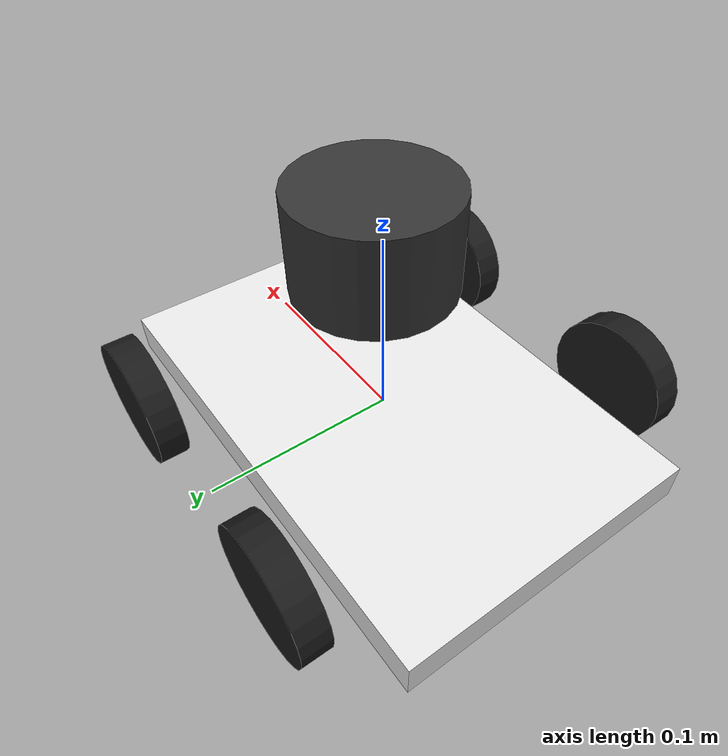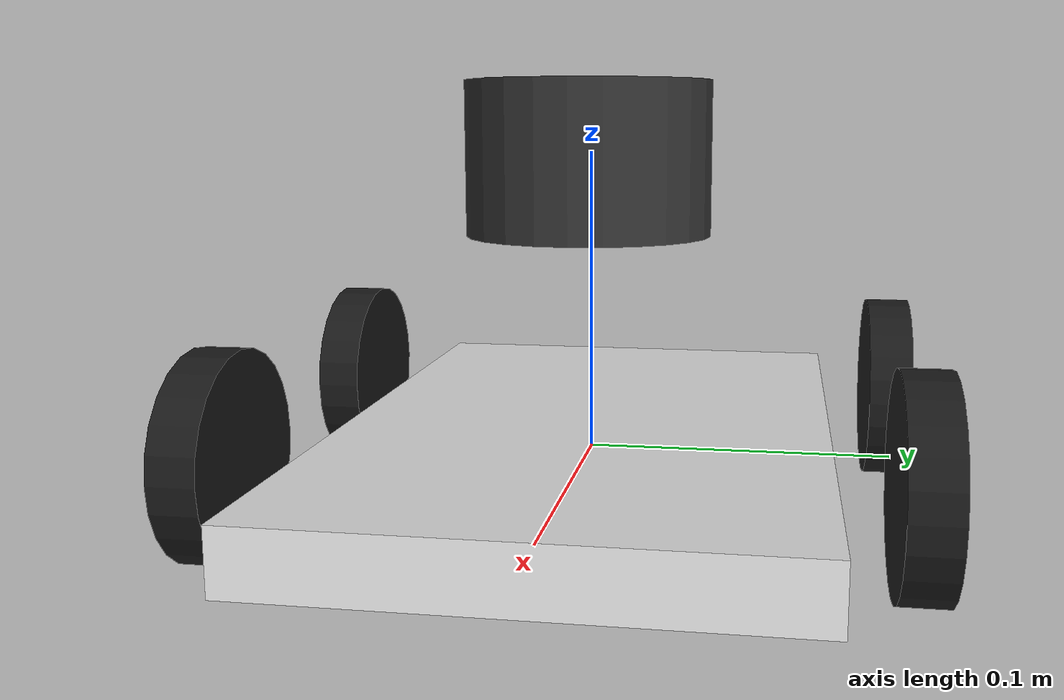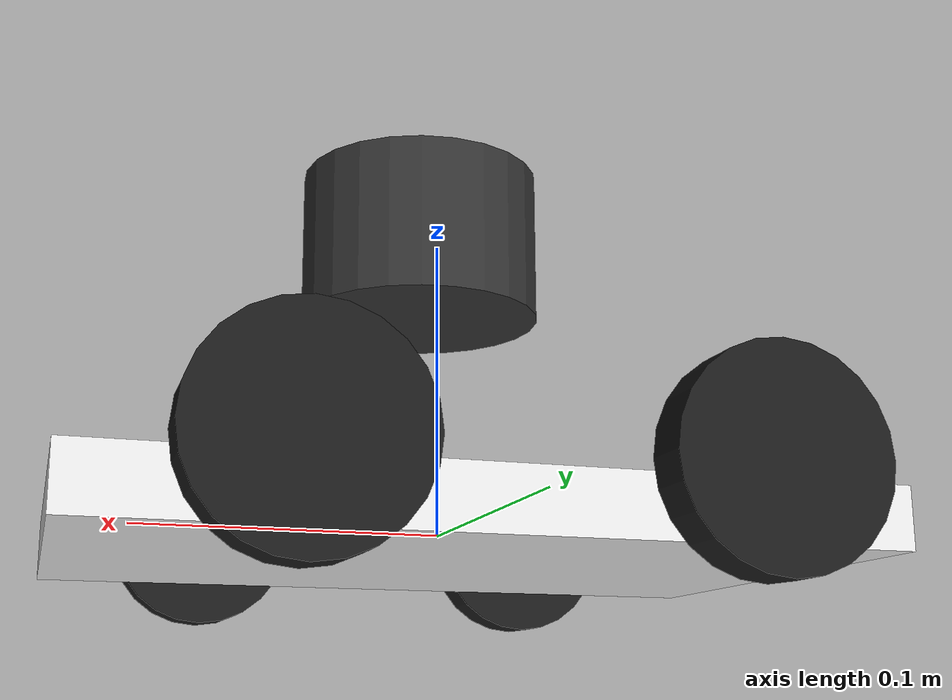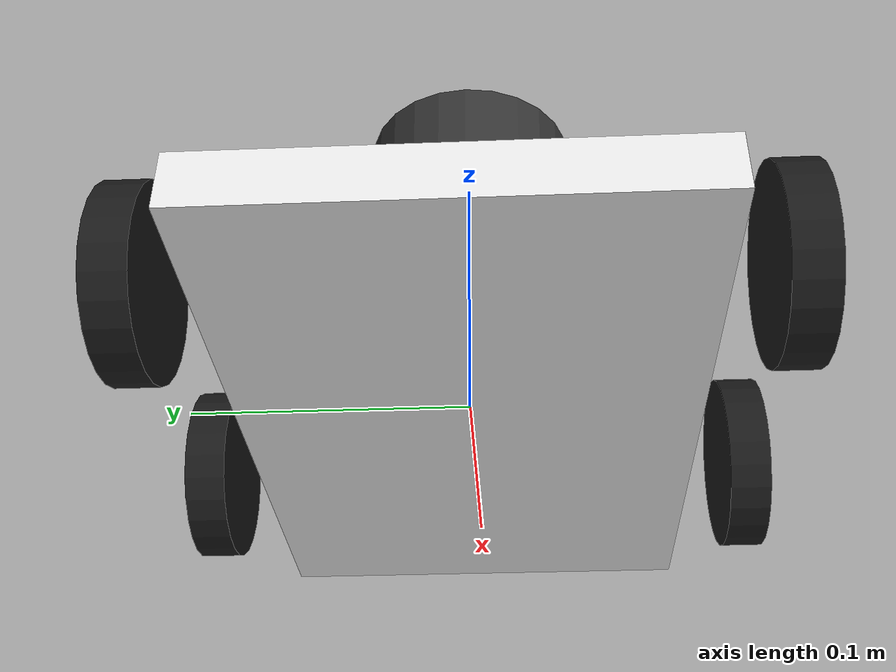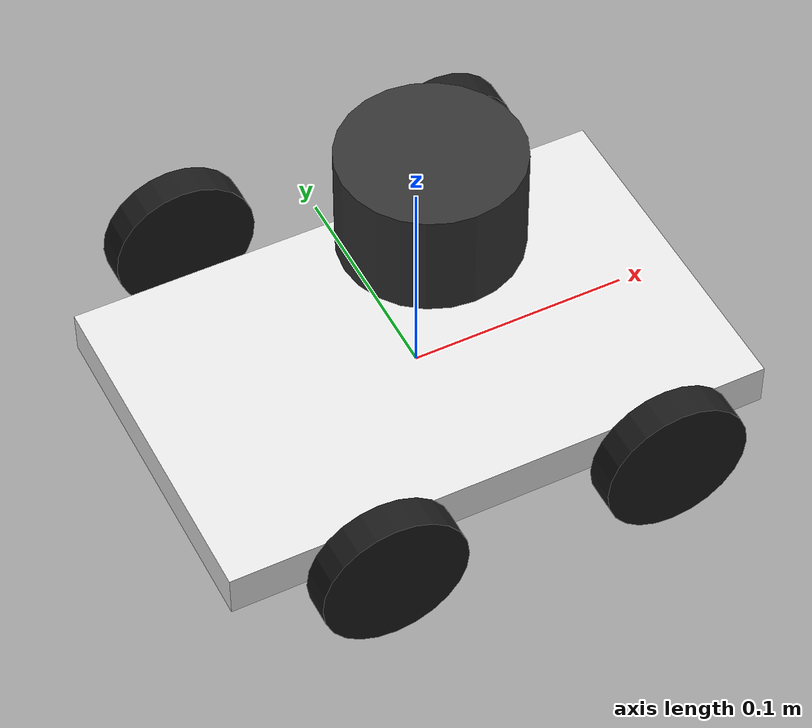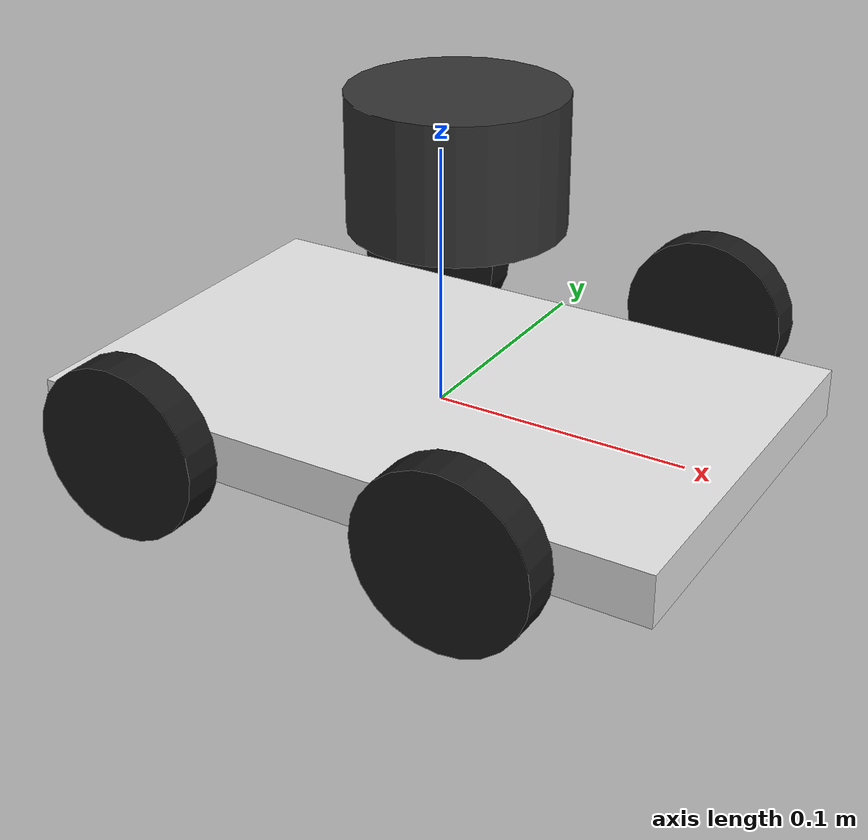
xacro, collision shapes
<?xml version="1.0" ?>
<robot name="simplebot2" xmlns:xacro="http://www.ros.org/wiki/xacro">
  <xacro:property name="M_PI" value="3.1415926535897931" />

  <xacro:arg name="robot_name" default="simplebot"/>
  <xacro:arg name="prefix" default=""/>
  <xacro:arg name="use_gazebo" default="false"/>

  <xacro:include filename="$(find simplebot_description)/urdf/parts.xacro"/>
  <xacro:include filename="$(find simplebot_description)/urdf/drive.xacro"/>
  <xacro:include filename="$(find simplebot_description)/urdf/gazebo.xacro"/>

  <link name="base_footprint"/>
  <joint name="base_footprint_joint" type="fixed">
    <parent link="base_footprint"/>
    <child link="base_link"/>
    <origin xyz="0 0 0.0 " rpy="0 0 0"/>
  </joint>

  <link name="base_link">
    <inertial>
      <origin xyz="0 0 0.0" rpy="0 0 0"/>
      <mass value="0.426296"/>
      <inertia ixx="0.00184221" ixy="9.36048e-11" ixz="-1.22606e-12" iyy="0.00190478" iyz="2.8119e-08" izz="0.00332037"/>
    </inertial>

    <xacro:base_link_visuals />

    <collision>
      <origin xyz="0.0 0 0.0" rpy="0 0 0"/>
      <geometry><box size="0.25 0.16 0.02"/></geometry>
    </collision>

  </link>

    <link name="lidar_link">
    <visual>
      <origin xyz="0.0 0.0 0.0" rpy="0 0 1.5708"/>
      <geometry>
        <mesh filename="file://$(find simplebot_description)/meshes/simplebot/rplidar_c1_fixed.stl"/>
      </geometry>

      <material name="lidar_material">
        <color rgba="0.2 0.2 0.2 1"/>
      </material>
    </visual>

    <collision>
      <geometry>
        <cylinder radius="0.04" length="0.05"/>
      </geometry>
    </collision>

    <inertial>
      <mass value="0.2"/>
      <origin xyz="0 0 0"/>
      <inertia ixx="0.0001" ixy="0" ixz="0"
              iyy="0.0001" iyz="0"
              izz="0.0001"/>
    </inertial>
  </link>

  <joint name="lidar_joint" type="fixed">
    <parent link="base_link"/>
    <child link="lidar_link"/>
    <origin xyz="0.0065 0 0.098" rpy="0 0 0"/>
  </joint>

  <xacro:drive_wheel side="left"  position="front" x="0.065"  y="0.103008"  z="0.010"/>
  <xacro:drive_wheel side="right" position="front" x="0.065"  y="-0.103008" z="0.010"/>
  <xacro:drive_wheel side="left"  position="back"  x="-0.065" y="0.103008"  z="0.010"/>
  <xacro:drive_wheel side="right" position="back"  x="-0.065" y="-0.103008" z="0.010"/>

    <xacro:include filename="$(find simplebot_description)/urdf/control/velocity_control_plugin.urdf.xacro" />
    <xacro:load_velocity_control_plugin use_gazebo="$(arg use_gazebo)"/>

    <xacro:include filename="$(find simplebot_description)/urdf/control/gazebo_sim_ros2_control.urdf.xacro" />
    <xacro:load_gazebo_sim_ros2_control_plugin
      robot_name="$(arg robot_name)"
      use_gazebo="$(arg use_gazebo)"/>

    <xacro:include filename="$(find simplebot_description)/urdf/control/simplebot_ros2_control.urdf.xacro" />
    <xacro:yahboom_rosmaster_ros2_control
      prefix="$(arg prefix)"
      use_gazebo="$(arg use_gazebo)"/>

</robot>

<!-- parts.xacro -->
<robot xmlns:xacro="http://www.ros.org/wiki/xacro">

  <xacro:macro name="visual_part" params="name mesh_file xyz rpy color">
    <visual name="${name}">
      <origin xyz="${xyz}" rpy="${rpy}"/>
      <geometry>
        <mesh filename="file://$(find simplebot_description)/meshes/simplebot/${mesh_file}.stl"/>
      </geometry>
      <material name="${name}_material">
        <color rgba="${color}"/>
      </material>
    </visual>
  </xacro:macro>

  <xacro:macro name="base_link_visuals">
    <xacro:visual_part name="chassis_plate" mesh_file="base_link" xyz="-0.085 0 -0.005" rpy="0 0 -1.5708" color="0.9 0.9 0.9 1"/>

    <xacro:visual_part name="frame1" mesh_file="frame1" xyz="-0.085 0 -0.005" rpy="0 0 -1.5708" color="0.6 0.8 0.9 1"/>
    <xacro:visual_part name="frame2" mesh_file="frame2" xyz="-0.085 0 -0.005" rpy="0 0 -1.5708" color="0.6 0.8 0.9 1"/>
    <xacro:visual_part name="frame3" mesh_file="frame3" xyz="-0.085 0 -0.005" rpy="0 0 -1.5708" color="0.6 0.8 0.9 1"/>
    <xacro:visual_part name="frame4" mesh_file="frame4" xyz="-0.085 0 -0.005" rpy="0 0 -1.5708" color="0.6 0.8 0.9 1"/>

    <xacro:visual_part name="motor_front_right" mesh_file="motor_front_right"  xyz="0.0475 0 0.1625" rpy="-1.5708 -0 -1.5708" color="0.6 0.6 0.6 1"/>
    <xacro:visual_part name="motor_front_left" mesh_file="motor_front_left"  xyz="0.0825 -6.93889e-18 -0.1375" rpy="1.5708 -0 -1.5708" color="0.6 0.6 0.6 1"/>
    <xacro:visual_part name="motor_rear_left" mesh_file="motor_rear_left"  xyz="-0.0825 1.38778e-17 0.0325" rpy="-1.5708 -0 -1.5708" color="0.6 0.6 0.6 1"/>
    <xacro:visual_part name="motor_rear_right" mesh_file="motor_rear_right"  xyz="-0.0475 1.04083e-17 -0.0075" rpy="1.5708 -0 -1.5708" color="0.6 0.6 0.6 1"/>

    <xacro:visual_part name="bracket_fr" mesh_file="motor_bracket_front_right" xyz="-0.085 0 -0.005" rpy="0 0 -1.5708" color="0.6 0.6 0.6 1"/>
    <xacro:visual_part name="bracket_fl" mesh_file="motor_bracket_front_left"  xyz="-0.085 0 -0.005" rpy="0 0 -1.5708" color="0.6 0.6 0.6 1"/>
    <xacro:visual_part name="bracket_rl" mesh_file="motor_bracket_rear_left"  xyz="-0.085 1.04083e-17 -0.005" rpy="0 -0 -1.5708" color="0.6 0.6 0.6 1"/>
    <xacro:visual_part name="bracket_rr" mesh_file="motor_bracket_rear_right"  xyz="-0.085 0 -0.005" rpy="0 0 -1.5708" color="0.6 0.6 0.6 1"/>

    <xacro:visual_part name="side_bracket_left" mesh_file="side_bracket_left"  xyz="-0.085 1.04083e-17 -0.005" rpy="0 -0 -1.5708" color="0.6 0.6 0.6 1"/>
    <xacro:visual_part name="side_bracket_right" mesh_file="side_bracket_right"  xyz="-0.085 1.04083e-17 -0.005" rpy="0 -0 -1.5708" color="0.6 0.6 0.6 1"/>

    <xacro:visual_part name="roarm_bracket" mesh_file="roarm_bracket"  xyz="-0.085 1.04083e-17 -0.005" rpy="0 -0 -1.5708" color="0.6 0.6 0.6 1"/>

    <xacro:visual_part name="a010_bracket" mesh_file="a010_bracket"  xyz="-0.085 2.42861e-17 -0.005" rpy="0 -0 -1.5708" color="0.6 0.6 0.6 1"/>

    <xacro:visual_part name="top_bracket" mesh_file="top_bracket"  xyz="-0.085 2.42861e-17 -0.005" rpy="0 -0 -1.5708" color="0.6 0.6 0.6 1"/>

  </xacro:macro>

</robot>

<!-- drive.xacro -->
<robot xmlns:xacro="http://www.ros.org/wiki/xacro">
  <xacro:include filename="$(find simplebot_description)/urdf/wheel.xacro"/>

  <xacro:macro name="drive_wheel" params="side position x y z">
    <xacro:wheel name="wheel_${position}_${side}" color="0.1 0.1 0.1 1"/>

    <joint name="joint_${position}_${side}" type="continuous">
      <parent link="base_link"/>
      <child link="wheel_${position}_${side}"/>
      <origin xyz="${x} ${y} ${z}" rpy="0 0 0"/>
      <axis xyz="0 1 0"/>
      <limit effort="5.0" velocity="20.0"/>
    </joint>
  </xacro:macro>
</robot>

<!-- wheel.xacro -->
<robot xmlns:xacro="http://www.ros.org/wiki/xacro">
  <xacro:macro name="wheel" params="name color">
    <link name="${name}">
      <inertial>
        <mass value="0.08"/>
        <origin xyz="0 0 0"/>
        <inertia ixx="0.000045" iyy="0.000045" izz="0.00009" ixy="0" ixz="0" iyz="0"/>
      </inertial>
      <visual>
        <origin xyz="0 0 0" rpy="-1.5708 0 0"/>
        <geometry>
          <cylinder radius="0.033" length="0.015"/>
        </geometry>
        <material name="${name}_material">
          <color rgba="${color}"/>
        </material>
      </visual>
      <collision>
        <origin xyz="0 0 0" rpy="-1.5708 0 0"/>
        <geometry>
          <cylinder radius="0.033" length="0.015"/>
        </geometry>
      </collision>
    </link>
    <gazebo reference="${name}">
  <surface>
    <friction>
      <ode>
        <mu>1.0</mu>
        <mu2>1.0</mu2>
      </ode>
    </friction>
  </surface>
</gazebo>
  </xacro:macro>
</robot>

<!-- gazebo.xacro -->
<robot xmlns:xacro="http://www.ros.org/wiki/xacro">
  <xacro:include filename="$(find simplebot_description)/urdf/wheel.xacro"/>

  <xacro:macro name="drive_wheel" params="side position x y z">
    <xacro:wheel name="wheel_${position}_${side}" color="0.1 0.1 0.1 1"/>

    <joint name="${position}_${side}_wheel_joint" type="continuous">
      <parent link="base_link"/>
      <child link="wheel_${position}_${side}"/>
      <origin xyz="${x} ${y} ${z}" rpy="0 0 0"/>
      <axis xyz="0 1 0"/>
      <limit effort="5.0" velocity="20.0"/>
    </joint>
  </xacro:macro>

    <gazebo reference="lidar_link">
  <sensor name="lidar" type="gpu_lidar">
    <topic>scan</topic>
    <update_rate>10</update_rate>

    <gz_frame_id>lidar_link</gz_frame_id>

    <lidar>
      <scan>
        <horizontal>
          <samples>720</samples>
          <resolution>1</resolution>
          <min_angle>-3.14159</min_angle>
          <max_angle>3.14159</max_angle>
        </horizontal>
      </scan>
      <range>
        <min>0.15</min>
        <max>12.0</max>
      </range>
    </lidar>
    <always_on>true</always_on>
    <visualize>true</visualize>
  </sensor>
</gazebo>
</robot>
